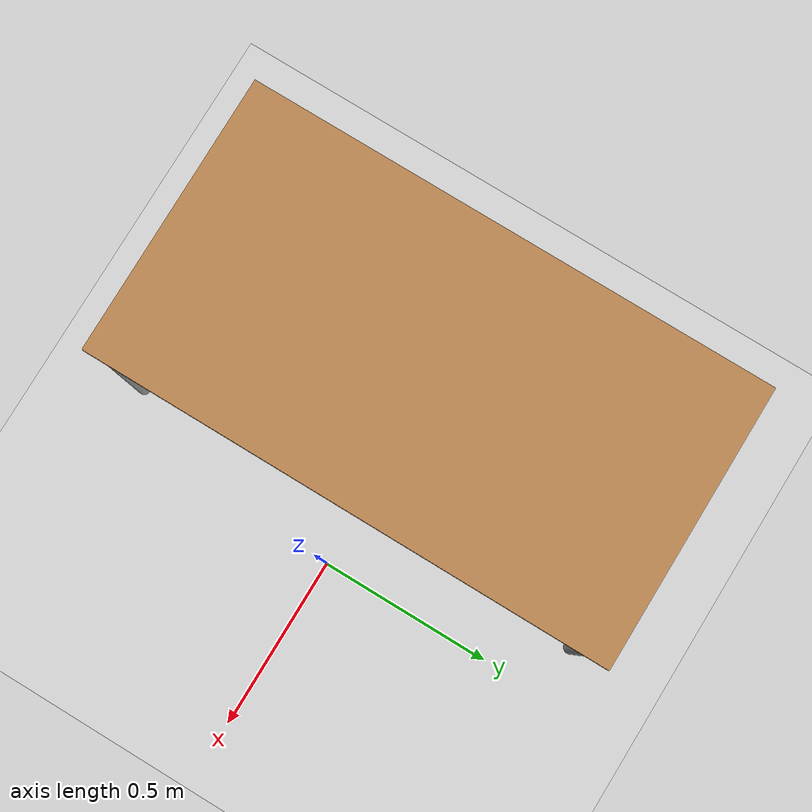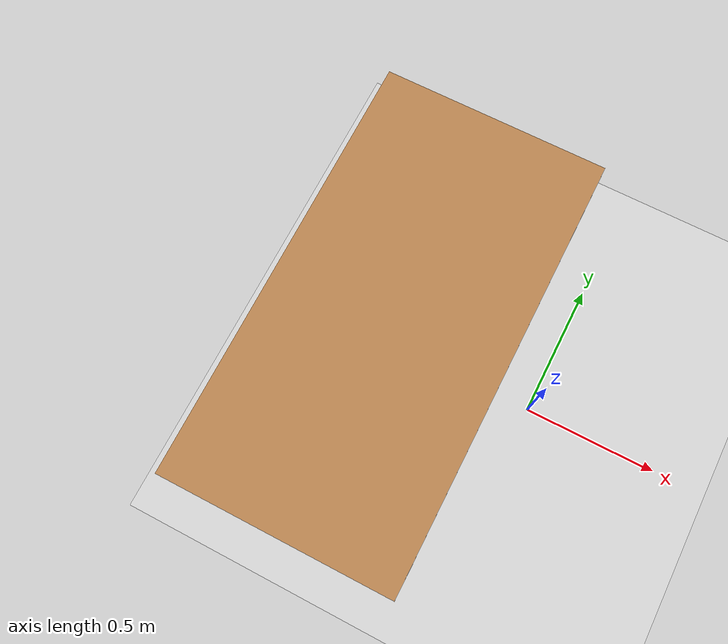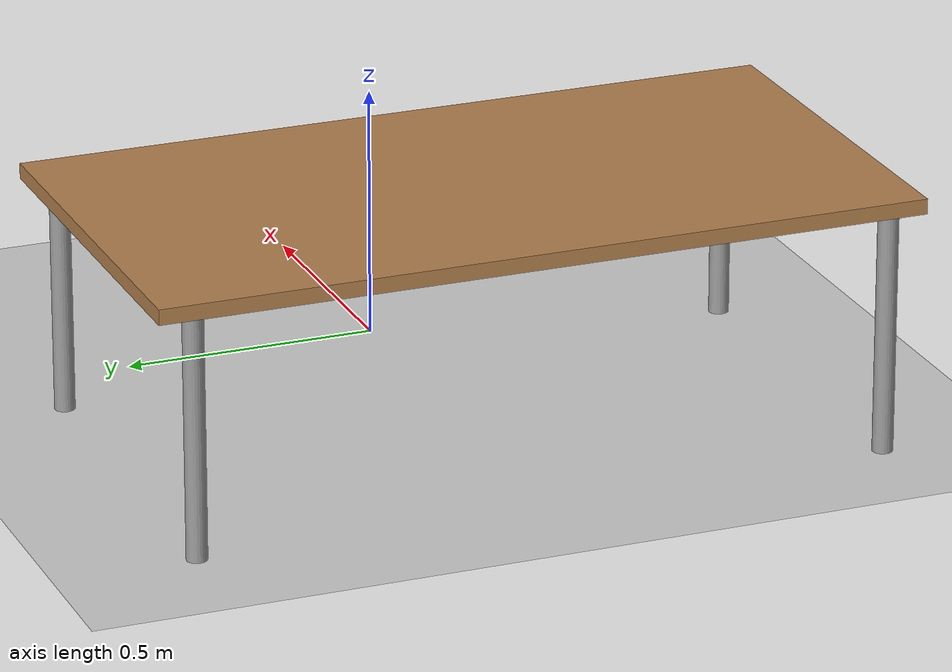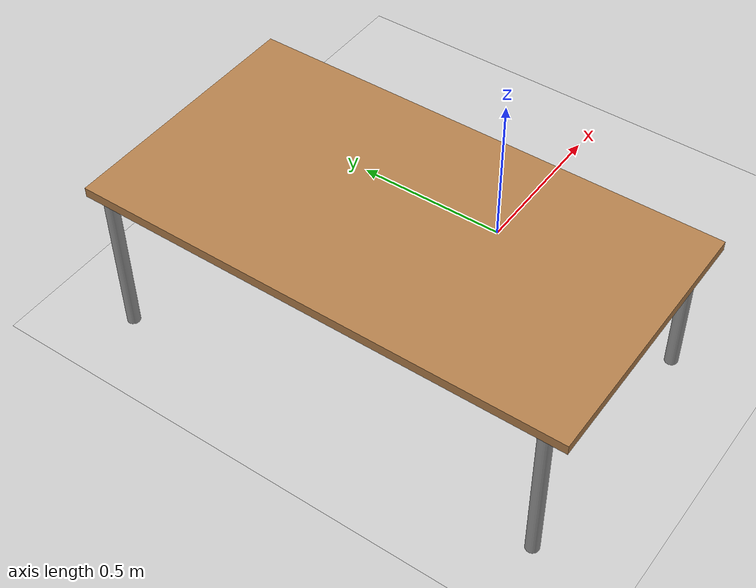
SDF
<sdf version="1.7">
 <world name="default">
  <include><uri>model://sun</uri></include>
  <include><uri>model://ground_plane</uri></include>
  <include><uri>model://my-table</uri><pose>-0.530772 0 0 0 0 -1.57</pose></include>
 </world>
</sdf>

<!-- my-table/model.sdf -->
<sdf version="1.7">
  <model name="my-table">
    <static>true</static>
    <link name="table_root_link">
      <collision name="table_surface_collision">
	<pose>0 0 0.485 0 0 0</pose>
	<geometry>
          <box>
            <size>1.5 0.8 0.03</size>
          </box>
	</geometry>
	<surface>
          <friction>
            <ode>
              <mu>0.1</mu>
              <mu2>0.1</mu2>
            </ode>
          </friction>
	</surface>
      </collision>
      <visual name="table_surface_visual">
	<pose>0 0 0.485 0 0 0</pose>
	<geometry>
          <box>
            <size>1.5 0.8 0.03</size>
          </box>
	</geometry>
	<material>
          <script>
            <uri>file://media/materials/scripts/gazebo.material</uri>
            <name>Gazebo/Wood</name>
          </script>
	</material>
      </visual>
      <collision name="front_left_leg">
        <pose>0.68 0.38 0.235 0 0 0</pose>
        <geometry>
          <cylinder>
            <radius>0.02</radius>
            <length>0.47</length>
          </cylinder>
        </geometry>
      </collision>
      <visual name="front_left_leg">
        <pose>0.68 0.38 0.235 0 0 0</pose>
        <geometry>
          <cylinder>
            <radius>0.02</radius>
            <length>0.47</length>
          </cylinder>
        </geometry>
        <material>
          <script>
            <uri>file://media/materials/scripts/gazebo.material</uri>
            <name>Gazebo/Grey</name>
          </script>
        </material>
      </visual>
      <collision name="front_right_leg">
        <pose>0.68 -0.38 0.235 0 0 0</pose>
        <geometry>
          <cylinder>
            <radius>0.02</radius>
            <length>0.47</length>
          </cylinder>
        </geometry>
      </collision>
      <visual name="front_right_leg">
        <pose>0.68 -0.38 0.235 0 0 0</pose>
        <geometry>
          <cylinder>
            <radius>0.02</radius>
            <length>0.47</length>
          </cylinder>
        </geometry>
        <material>
          <script>
            <uri>file://media/materials/scripts/gazebo.material</uri>
            <name>Gazebo/Grey</name>
          </script>
        </material>
      </visual>
      <collision name="back_right_leg">
        <pose>-0.68 -0.38 0.235 0 0 0</pose>
        <geometry>
          <cylinder>
            <radius>0.02</radius>
            <length>0.47</length>
          </cylinder>
        </geometry>
      </collision>
      <visual name="back_right_leg">
        <pose>-0.68 -0.38 0.235 0 0 0</pose>
        <geometry>
          <cylinder>
            <radius>0.02</radius>
            <length>0.47</length>
          </cylinder>
        </geometry>
        <material>
          <script>
            <uri>file://media/materials/scripts/gazebo.material</uri>
            <name>Gazebo/Grey</name>
          </script>
        </material>
      </visual>
      <collision name="back_left_leg">
        <pose>-0.68 0.38 0.235 0 0 0</pose>
        <geometry>
          <cylinder>
            <radius>0.02</radius>
            <length>0.47</length>
          </cylinder>
        </geometry>
      </collision>
      <visual name="back_left_leg">
        <pose>-0.68 0.38 0.235 0 0 0</pose>
        <geometry>
          <cylinder>
            <radius>0.02</radius>
            <length>0.47</length>
          </cylinder>
        </geometry>
        <material>
          <script>
            <uri>file://media/materials/scripts/gazebo.material</uri>
            <name>Gazebo/Grey</name>
          </script>
        </material>
      </visual>
    </link>
  </model>
</sdf>
